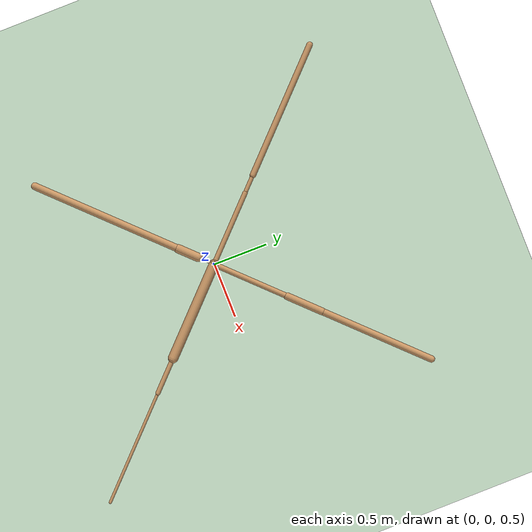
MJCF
<mujoco model="ant">
  <compiler angle="degree" coordinate="local" inertiafromgeom="true" />
  <option integrator="RK4" timestep="0.01" />
  <custom>
    <numeric data="0.0 0.0 0.55 1.0 0.0 0.0 0.0 0.0 1.0 0.0 -1.0 0.0 -1.0 0.0 1.0" name="init_qpos" />
  </custom>
  <default>
    <joint armature="1" damping="1" limited="true" />
    <geom conaffinity="0" condim="3" density="5.0" friction="1 0.5 0.5" margin="0.01" rgba="0.8 0.6 0.4 1" />
  </default>
  <asset>
    <texture builtin="gradient" height="100" rgb1="1 1 1" rgb2="0 0 0" type="skybox" width="100" />
    <texture builtin="flat" height="1278" mark="cross" markrgb="1 1 1" name="texgeom" random="0.01" rgb1="0.8 0.6 0.4" rgb2="0.8 0.6 0.4" type="cube" width="127" />
    <texture builtin="checker" height="100" name="texplane" rgb1="0 0 0" rgb2="0.8 0.8 0.8" type="2d" width="100" />
    <material name="MatPlane" reflectance="0.5" shininess="1" specular="1" texrepeat="60 60" texture="texplane" />
    <material name="geom" texture="texgeom" texuniform="true" />
  </asset>
  <worldbody>
    <light cutoff="100" diffuse="1 1 1" dir="-0 0 -1.3" directional="true" exponent="1" pos="0 0 1.3" specular=".1 .1 .1" />
    <geom conaffinity="1" condim="3" material="MatPlane" name="floor" pos="0 0 0" rgba="0.8 0.9 0.8 1" size="40 40 40" type="plane" />
    <body name="torso" pos="0 0 0.75">
      <camera name="track" mode="trackcom" pos="0 -11 5" xyaxes="1 0 0 0 0.5 1" />
      <geom name="torso_geom" pos="0 0 0" size="0.04488804191350937" type="sphere" />
      <joint armature="0" damping="0" limited="false" margin="0.01" name="root" pos="0 0 0" type="free" />
      <body name="front_left_leg" pos="0 0 0">
        <geom fromto="0 0 0 0.4934261739253998 0.4934261739253998 0" name="aux_1_geom" size="0.024843961000442505" type="capsule" />
        <body name="aux_1" pos="0.4934261739253998 0.4934261739253998 0">
          <joint axis="0 0 1" name="hip_1" pos="0.0 0.0 0.0" range="-30 30" type="hinge" />
          <geom fromto="0 0 0 0.23442748188972473 0.23442748188972473 0" name="left_leg_geom" size="0.032806187868118286" type="capsule" />
          <body name="left_leg_geom_aux" pos="0.23442748188972473 0.23442748188972473 0">
            <joint axis="-1 1 0" name="ankle_1" pos="0.0 0.0 0.0" range="30 70" type="hinge" />
            <geom fromto="0 0 0 0.7364048957824707 0.7364048957824707 0" name="left_ankle_geom" size="0.030695708468556404" type="capsule" />
          </body>
        </body>
      </body>
      <body name="front_right_leg" pos="0 0 0">
        <geom fromto="0 0 0 -0.4814377725124359 0.4814377725124359 0" name="aux_2_geom" size="0.02251974307000637" type="capsule" />
        <body name="aux_2" pos="-0.4814377725124359 0.4814377725124359 0">
          <joint axis="0 0 1" name="hip_2" pos="0.0 0.0 0.0" range="-30 30" type="hinge" />
          <geom fromto="0 0 0 -0.11899866163730621 0.11899866163730621 0" name="right_leg_geom" size="0.018872331827878952" type="capsule" />
          <body name="right_leg_geom_aux" pos="-0.11899866163730621 0.11899866163730621 0">
            <joint axis="1 1 0" name="ankle_2" pos="0.0 0.0 0.0" range="-70 -30" type="hinge" />
            <geom fromto="0 0 0 -0.8774735927581787 0.8774735927581787 0" name="right_ankle_geom" size="0.027697458863258362" type="capsule" />
          </body>
        </body>
      </body>
      <body name="back_leg" pos="0 0 0">
        <geom fromto="0 0 0 -0.10762853175401688 -0.10762853175401688 0" name="aux_3_geom" size="0.010939693078398705" type="capsule" />
        <body name="aux_3" pos="-0.10762853175401688 -0.10762853175401688 0">
          <joint axis="0 0 1" name="hip_3" pos="0.0 0.0 0.0" range="-30 30" type="hinge" />
          <geom fromto="0 0 0 -0.13152819871902466 -0.13152819871902466 0" name="back_leg_geom" size="0.03977002203464508" type="capsule" />
          <body name="back_leg_geom_aux" pos="-0.13152819871902466 -0.13152819871902466 0">
            <joint axis="-1 1 0" name="ankle_3" pos="0.0 0.0 0.0" range="-70 -30" type="hinge" />
            <geom fromto="0 0 0 -0.9668886065483093 -0.9668886065483093 0" name="third_ankle_geom" size="0.032813526690006256" type="capsule" />
          </body>
        </body>
      </body>
      <body name="right_back_leg" pos="0 0 0">
        <geom fromto="0 0 0 0.6314460635185242 -0.6314460635185242 0" name="aux_4_geom" size="0.04529069736599922" type="capsule" />
        <body name="aux_4" pos="0.6314460635185242 -0.6314460635185242 0">
          <joint axis="0 0 1" name="hip_4" pos="0.0 0.0 0.0" range="-30 30" type="hinge" />
          <geom fromto="0 0 0 0.23728737235069275 -0.23728737235069275 0" name="rightback_leg_geom" size="0.021491628140211105" type="capsule" />
          <body name="rightback_leg_geom_aux" pos="0.23728737235069275 -0.23728737235069275 0">
            <joint axis="1 1 0" name="ankle_4" pos="0.0 0.0 0.0" range="30 70" type="hinge" />
            <geom fromto="0 0 0 0.7346761226654053 -0.7346761226654053 0" name="fourth_ankle_geom" size="0.01361333392560482" type="capsule" />
          </body>
        </body>
      </body>
    </body>
  </worldbody>
  <actuator>
    <motor ctrllimited="true" ctrlrange="-1.0 1.0" joint="hip_4" gear="150" />
    <motor ctrllimited="true" ctrlrange="-1.0 1.0" joint="ankle_4" gear="150" />
    <motor ctrllimited="true" ctrlrange="-1.0 1.0" joint="hip_1" gear="150" />
    <motor ctrllimited="true" ctrlrange="-1.0 1.0" joint="ankle_1" gear="150" />
    <motor ctrllimited="true" ctrlrange="-1.0 1.0" joint="hip_2" gear="150" />
    <motor ctrllimited="true" ctrlrange="-1.0 1.0" joint="ankle_2" gear="150" />
    <motor ctrllimited="true" ctrlrange="-1.0 1.0" joint="hip_3" gear="150" />
    <motor ctrllimited="true" ctrlrange="-1.0 1.0" joint="ankle_3" gear="150" />
  </actuator>
</mujoco>
